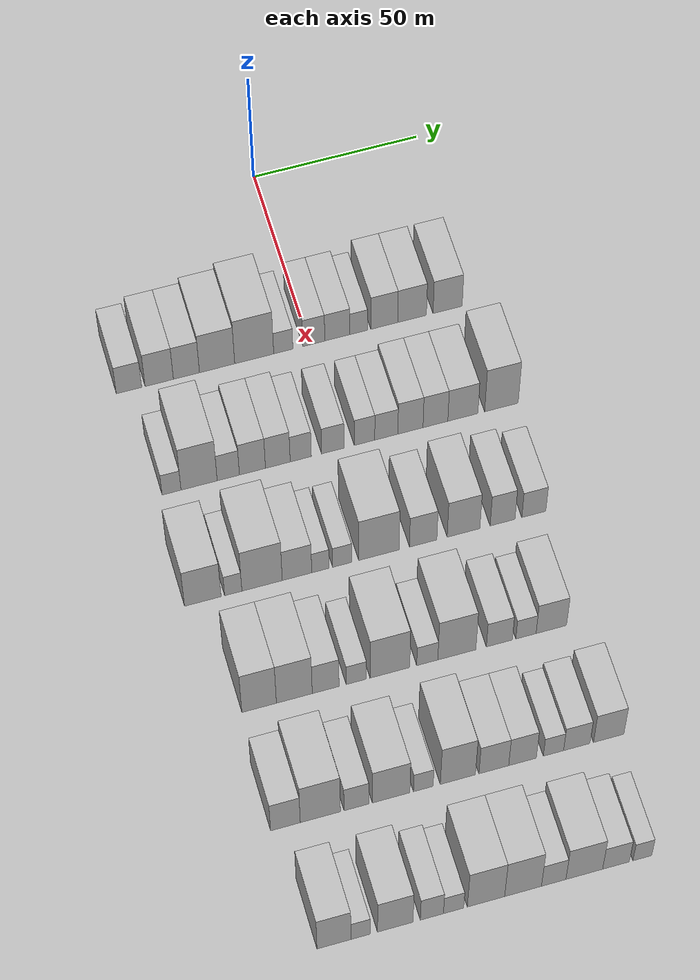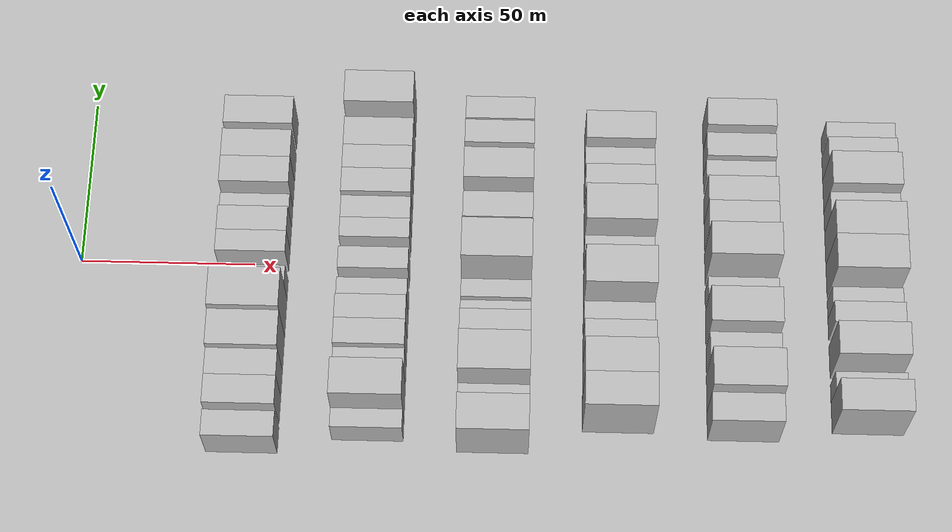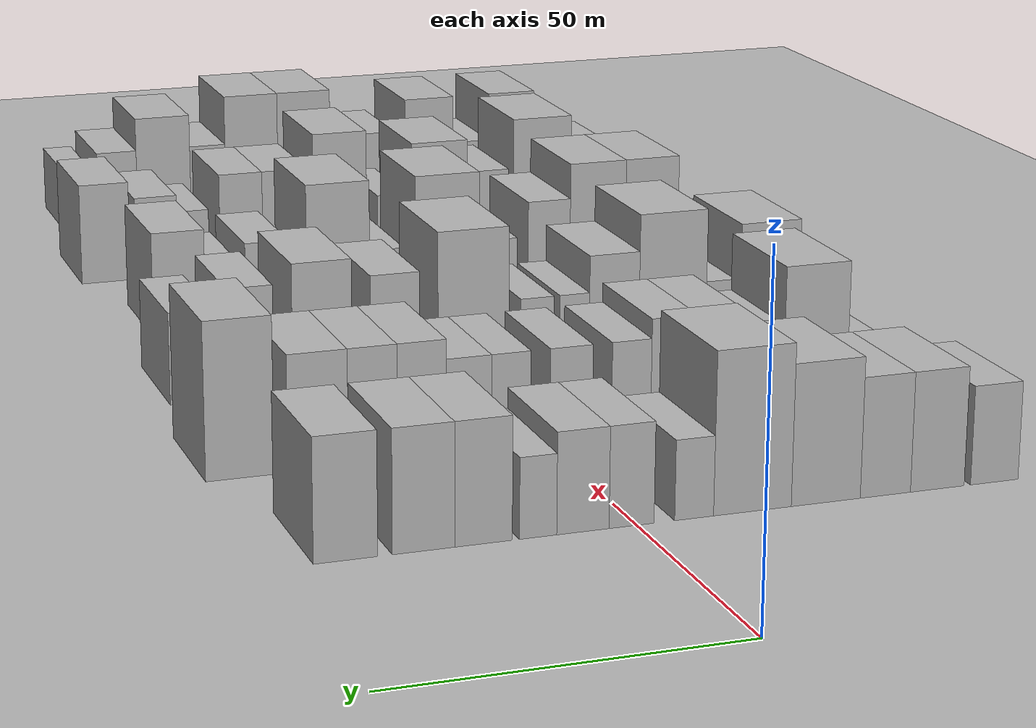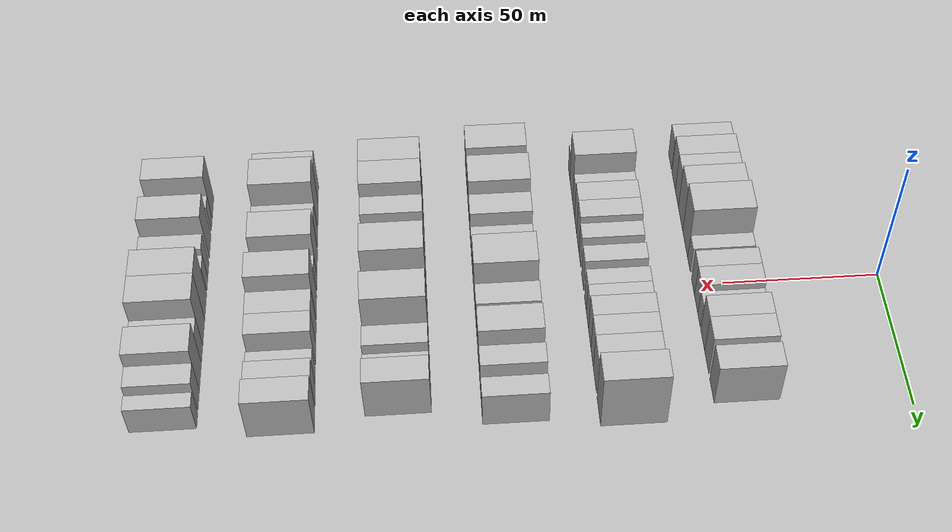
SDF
<sdf version="1.6">
 <world name="default">
  <include><name>ground_plane_1</name><uri>model://HANNAS_ground_plane</uri></include>
  <include>
   <name>ground_plane_2</name>
   <uri>model://HANNAS_ground_plane</uri>
   <pose>100 0 0  0 0 0</pose>
  </include>
  <model name="building_53">
   <static>1</static>
   <pose>50.0000 -53.4832 0 0.000000 0.000000 0.000000</pose>
   <link name="link">
    <pose>0 0 7.50 0 0 0</pose>
    <collision name="collision"><geometry><box><size>20.0000 7.4602 15.0000</size></box></geometry></collision>
    <visual name="visual">
     <cast_shadows>0</cast_shadows>
     <geometry><box><size>20.0000 7.4602 15.0000</size></box></geometry>
     <material>
      <script>
       <uri>model://HANNAS_wall/materials/scripts</uri>
       <uri>model://HANNAS_wall/materials/textures</uri>
       <name>vrc/HANNAS_wall</name>
      </script>
     </material>
    </visual>
   </link>
  </model>
  <model name="building_54">
   <static>1</static>
   <pose>50.0000 -44.5906 0 0.000000 0.000000 0.000000</pose>
   <link name="link">
    <pose>0 0 9.00 0 0 0</pose>
    <collision name="collision"><geometry><box><size>20.0000 8.3251 18.0000</size></box></geometry></collision>
    <visual name="visual">
     <cast_shadows>0</cast_shadows>
     <geometry><box><size>20.0000 8.3251 18.0000</size></box></geometry>
     <material>
      <script>
       <uri>model://HANNAS_wall/materials/scripts</uri>
       <uri>model://HANNAS_wall/materials/textures</uri>
       <name>vrc/HANNAS_wall</name>
      </script>
     </material>
    </visual>
   </link>
  </model>
  <model name="building_55">
   <static>1</static>
   <pose>50.0000 -36.5791 0 0.000000 0.000000 0.000000</pose>
   <link name="link">
    <pose>0 0 9.00 0 0 0</pose>
    <collision name="collision"><geometry><box><size>20.0000 7.6979 18.0000</size></box></geometry></collision>
    <visual name="visual">
     <cast_shadows>0</cast_shadows>
     <geometry><box><size>20.0000 7.6979 18.0000</size></box></geometry>
     <material>
      <script>
       <uri>model://HANNAS_wall/materials/scripts</uri>
       <uri>model://HANNAS_wall/materials/textures</uri>
       <name>vrc/HANNAS_wall</name>
      </script>
     </material>
    </visual>
   </link>
  </model>
  <model name="building_56">
   <static>1</static>
   <pose>50.0000 -27.5127 0 0.000000 0.000000 0.000000</pose>
   <link name="link">
    <pose>0 0 10.50 0 0 0</pose>
    <collision name="collision"><geometry><box><size>20.0000 10.4349 21.0000</size></box></geometry></collision>
    <visual name="visual">
     <cast_shadows>0</cast_shadows>
     <geometry><box><size>20.0000 10.4349 21.0000</size></box></geometry>
     <material>
      <script>
       <uri>model://HANNAS_wall/materials/scripts</uri>
       <uri>model://HANNAS_wall/materials/textures</uri>
       <name>vrc/HANNAS_wall</name>
      </script>
     </material>
    </visual>
   </link>
  </model>
  <model name="building_57">
   <static>1</static>
   <pose>50.0000 -16.5197 0 0.000000 0.000000 0.000000</pose>
   <link name="link">
    <pose>0 0 12.00 0 0 0</pose>
    <collision name="collision"><geometry><box><size>20.0000 11.5510 24.0000</size></box></geometry></collision>
    <visual name="visual">
     <cast_shadows>0</cast_shadows>
     <geometry><box><size>20.0000 11.5510 24.0000</size></box></geometry>
     <material>
      <script>
       <uri>model://HANNAS_wall/materials/scripts</uri>
       <uri>model://HANNAS_wall/materials/textures</uri>
       <name>vrc/HANNAS_wall</name>
      </script>
     </material>
    </visual>
   </link>
  </model>
  <model name="building_58">
   <static>1</static>
   <pose>50.0000 -7.8881 0 0.000000 0.000000 0.000000</pose>
   <link name="link">
    <pose>0 0 6.00 0 0 0</pose>
    <collision name="collision"><geometry><box><size>20.0000 5.7123 12.0000</size></box></geometry></collision>
    <visual name="visual">
     <cast_shadows>0</cast_shadows>
     <geometry><box><size>20.0000 5.7123 12.0000</size></box></geometry>
     <material>
      <script>
       <uri>model://HANNAS_wall/materials/scripts</uri>
       <uri>model://HANNAS_wall/materials/textures</uri>
       <name>vrc/HANNAS_wall</name>
      </script>
     </material>
    </visual>
   </link>
  </model>
  <model name="building_59">
   <static>1</static>
   <pose>50.0000 1.2218 0 0.000000 0.000000 0.000000</pose>
   <link name="link">
    <pose>0 0 7.50 0 0 0</pose>
    <collision name="collision"><geometry><box><size>20.0000 6.5074 15.0000</size></box></geometry></collision>
    <visual name="visual">
     <cast_shadows>0</cast_shadows>
     <geometry><box><size>20.0000 6.5074 15.0000</size></box></geometry>
     <material>
      <script>
       <uri>model://HANNAS_wall/materials/scripts</uri>
       <uri>model://HANNAS_wall/materials/textures</uri>
       <name>vrc/HANNAS_wall</name>
      </script>
     </material>
    </visual>
   </link>
  </model>
  <model name="building_60">
   <static>1</static>
   <pose>50.0000 8.2229 0 0.000000 0.000000 0.000000</pose>
   <link name="link">
    <pose>0 0 7.50 0 0 0</pose>
    <collision name="collision"><geometry><box><size>20.0000 7.4949 15.0000</size></box></geometry></collision>
    <visual name="visual">
     <cast_shadows>0</cast_shadows>
     <geometry><box><size>20.0000 7.4949 15.0000</size></box></geometry>
     <material>
      <script>
       <uri>model://HANNAS_wall/materials/scripts</uri>
       <uri>model://HANNAS_wall/materials/textures</uri>
       <name>vrc/HANNAS_wall</name>
      </script>
     </material>
    </visual>
   </link>
  </model>
  <model name="building_61">
   <static>1</static>
   <pose>50.0000 14.6097 0 0.000000 0.000000 0.000000</pose>
   <link name="link">
    <pose>0 0 6.00 0 0 0</pose>
    <collision name="collision"><geometry><box><size>20.0000 5.2786 12.0000</size></box></geometry></collision>
    <visual name="visual">
     <cast_shadows>0</cast_shadows>
     <geometry><box><size>20.0000 5.2786 12.0000</size></box></geometry>
     <material>
      <script>
       <uri>model://HANNAS_wall/materials/scripts</uri>
       <uri>model://HANNAS_wall/materials/textures</uri>
       <name>vrc/HANNAS_wall</name>
      </script>
     </material>
    </visual>
   </link>
  </model>
  <model name="building_62">
   <static>1</static>
   <pose>50.0000 22.2800 0 0.000000 0.000000 0.000000</pose>
   <link name="link">
    <pose>0 0 9.00 0 0 0</pose>
    <collision name="collision"><geometry><box><size>20.0000 8.0620 18.0000</size></box></geometry></collision>
    <visual name="visual">
     <cast_shadows>0</cast_shadows>
     <geometry><box><size>20.0000 8.0620 18.0000</size></box></geometry>
     <material>
      <script>
       <uri>model://HANNAS_wall/materials/scripts</uri>
       <uri>model://HANNAS_wall/materials/textures</uri>
       <name>vrc/HANNAS_wall</name>
      </script>
     </material>
    </visual>
   </link>
  </model>
  <model name="building_63">
   <static>1</static>
   <pose>50.0000 30.6245 0 0.000000 0.000000 0.000000</pose>
   <link name="link">
    <pose>0 0 9.00 0 0 0</pose>
    <collision name="collision"><geometry><box><size>20.0000 8.6270 18.0000</size></box></geometry></collision>
    <visual name="visual">
     <cast_shadows>0</cast_shadows>
     <geometry><box><size>20.0000 8.6270 18.0000</size></box></geometry>
     <material>
      <script>
       <uri>model://HANNAS_wall/materials/scripts</uri>
       <uri>model://HANNAS_wall/materials/textures</uri>
       <name>vrc/HANNAS_wall</name>
      </script>
     </material>
    </visual>
   </link>
  </model>
  <model name="building_64">
   <static>1</static>
   <pose>50.0000 41.3182 0 0.000000 0.000000 0.000000</pose>
   <link name="link">
    <pose>0 0 9.00 0 0 0</pose>
    <collision name="collision"><geometry><box><size>20.0000 8.7604 18.0000</size></box></geometry></collision>
    <visual name="visual">
     <cast_shadows>0</cast_shadows>
     <geometry><box><size>20.0000 8.7604 18.0000</size></box></geometry>
     <material>
      <script>
       <uri>model://HANNAS_wall/materials/scripts</uri>
       <uri>model://HANNAS_wall/materials/textures</uri>
       <name>vrc/HANNAS_wall</name>
      </script>
     </material>
    </visual>
   </link>
  </model>
  <model name="building_185">
   <static>1</static>
   <pose>85.0000 -50.1500 0 0.000000 0.000000 0.000000</pose>
   <link name="link">
    <pose>0 0 6.00 0 0 0</pose>
    <collision name="collision"><geometry><box><size>20.0000 5.4912 12.0000</size></box></geometry></collision>
    <visual name="visual">
     <cast_shadows>0</cast_shadows>
     <geometry><box><size>20.0000 5.4912 12.0000</size></box></geometry>
     <material>
      <script>
       <uri>model://HANNAS_wall/materials/scripts</uri>
       <uri>model://HANNAS_wall/materials/textures</uri>
       <name>vrc/HANNAS_wall</name>
      </script>
     </material>
    </visual>
   </link>
  </model>
  <model name="building_186">
   <static>1</static>
   <pose>85.0000 -42.1693 0 0.000000 0.000000 0.000000</pose>
   <link name="link">
    <pose>0 0 12.00 0 0 0</pose>
    <collision name="collision"><geometry><box><size>20.0000 10.4702 24.0000</size></box></geometry></collision>
    <visual name="visual">
     <cast_shadows>0</cast_shadows>
     <geometry><box><size>20.0000 10.4702 24.0000</size></box></geometry>
     <material>
      <script>
       <uri>model://HANNAS_wall/materials/scripts</uri>
       <uri>model://HANNAS_wall/materials/textures</uri>
       <name>vrc/HANNAS_wall</name>
      </script>
     </material>
    </visual>
   </link>
  </model>
  <model name="building_187">
   <static>1</static>
   <pose>85.0000 -33.7051 0 0.000000 0.000000 0.000000</pose>
   <link name="link">
    <pose>0 0 7.50 0 0 0</pose>
    <collision name="collision"><geometry><box><size>20.0000 6.4581 15.0000</size></box></geometry></collision>
    <visual name="visual">
     <cast_shadows>0</cast_shadows>
     <geometry><box><size>20.0000 6.4581 15.0000</size></box></geometry>
     <material>
      <script>
       <uri>model://HANNAS_wall/materials/scripts</uri>
       <uri>model://HANNAS_wall/materials/textures</uri>
       <name>vrc/HANNAS_wall</name>
      </script>
     </material>
    </visual>
   </link>
  </model>
  <model name="building_188">
   <static>1</static>
   <pose>85.0000 -26.6820 0 0.000000 0.000000 0.000000</pose>
   <link name="link">
    <pose>0 0 9.00 0 0 0</pose>
    <collision name="collision"><geometry><box><size>20.0000 7.5883 18.0000</size></box></geometry></collision>
    <visual name="visual">
     <cast_shadows>0</cast_shadows>
     <geometry><box><size>20.0000 7.5883 18.0000</size></box></geometry>
     <material>
      <script>
       <uri>model://HANNAS_wall/materials/scripts</uri>
       <uri>model://HANNAS_wall/materials/textures</uri>
       <name>vrc/HANNAS_wall</name>
      </script>
     </material>
    </visual>
   </link>
  </model>
  <model name="building_189">
   <static>1</static>
   <pose>85.0000 -19.2798 0 0.000000 0.000000 0.000000</pose>
   <link name="link">
    <pose>0 0 9.00 0 0 0</pose>
    <collision name="collision"><geometry><box><size>20.0000 7.2161 18.0000</size></box></geometry></collision>
    <visual name="visual">
     <cast_shadows>0</cast_shadows>
     <geometry><box><size>20.0000 7.2161 18.0000</size></box></geometry>
     <material>
      <script>
       <uri>model://HANNAS_wall/materials/scripts</uri>
       <uri>model://HANNAS_wall/materials/textures</uri>
       <name>vrc/HANNAS_wall</name>
      </script>
     </material>
    </visual>
   </link>
  </model>
  <model name="building_190">
   <static>1</static>
   <pose>85.0000 -12.5834 0 0.000000 0.000000 0.000000</pose>
   <link name="link">
    <pose>0 0 7.50 0 0 0</pose>
    <collision name="collision"><geometry><box><size>20.0000 6.1767 15.0000</size></box></geometry></collision>
    <visual name="visual">
     <cast_shadows>0</cast_shadows>
     <geometry><box><size>20.0000 6.1767 15.0000</size></box></geometry>
     <material>
      <script>
       <uri>model://HANNAS_wall/materials/scripts</uri>
       <uri>model://HANNAS_wall/materials/textures</uri>
       <name>vrc/HANNAS_wall</name>
      </script>
     </material>
    </visual>
   </link>
  </model>
  <model name="building_191">
   <static>1</static>
   <pose>85.0000 -3.2048 0 0.000000 0.000000 0.000000</pose>
   <link name="link">
    <pose>0 0 7.50 0 0 0</pose>
    <collision name="collision"><geometry><box><size>20.0000 6.5804 15.0000</size></box></geometry></collision>
    <visual name="visual">
     <cast_shadows>0</cast_shadows>
     <geometry><box><size>20.0000 6.5804 15.0000</size></box></geometry>
     <material>
      <script>
       <uri>model://HANNAS_wall/materials/scripts</uri>
       <uri>model://HANNAS_wall/materials/textures</uri>
       <name>vrc/HANNAS_wall</name>
      </script>
     </material>
    </visual>
   </link>
  </model>
  <model name="building_192">
   <static>1</static>
   <pose>85.0000 6.0995 0 0.000000 0.000000 0.000000</pose>
   <link name="link">
    <pose>0 0 7.50 0 0 0</pose>
    <collision name="collision"><geometry><box><size>20.0000 6.0282 15.0000</size></box></geometry></collision>
    <visual name="visual">
     <cast_shadows>0</cast_shadows>
     <geometry><box><size>20.0000 6.0282 15.0000</size></box></geometry>
     <material>
      <script>
       <uri>model://HANNAS_wall/materials/scripts</uri>
       <uri>model://HANNAS_wall/materials/textures</uri>
       <name>vrc/HANNAS_wall</name>
      </script>
     </material>
    </visual>
   </link>
  </model>
  <model name="building_193">
   <static>1</static>
   <pose>85.0000 12.5198 0 0.000000 0.000000 0.000000</pose>
   <link name="link">
    <pose>0 0 7.50 0 0 0</pose>
    <collision name="collision"><geometry><box><size>20.0000 6.8123 15.0000</size></box></geometry></collision>
    <visual name="visual">
     <cast_shadows>0</cast_shadows>
     <geometry><box><size>20.0000 6.8123 15.0000</size></box></geometry>
     <material>
      <script>
       <uri>model://HANNAS_wall/materials/scripts</uri>
       <uri>model://HANNAS_wall/materials/textures</uri>
       <name>vrc/HANNAS_wall</name>
      </script>
     </material>
    </visual>
   </link>
  </model>
  <model name="building_194">
   <static>1</static>
   <pose>85.0000 19.6319 0 0.000000 0.000000 0.000000</pose>
   <link name="link">
    <pose>0 0 9.00 0 0 0</pose>
    <collision name="collision"><geometry><box><size>20.0000 7.4119 18.0000</size></box></geometry></collision>
    <visual name="visual">
     <cast_shadows>0</cast_shadows>
     <geometry><box><size>20.0000 7.4119 18.0000</size></box></geometry>
     <material>
      <script>
       <uri>model://HANNAS_wall/materials/scripts</uri>
       <uri>model://HANNAS_wall/materials/textures</uri>
       <name>vrc/HANNAS_wall</name>
      </script>
     </material>
    </visual>
   </link>
  </model>
  <model name="building_195">
   <static>1</static>
   <pose>85.0000 27.0115 0 0.000000 0.000000 0.000000</pose>
   <link name="link">
    <pose>0 0 9.00 0 0 0</pose>
    <collision name="collision"><geometry><box><size>20.0000 7.3475 18.0000</size></box></geometry></collision>
    <visual name="visual">
     <cast_shadows>0</cast_shadows>
     <geometry><box><size>20.0000 7.3475 18.0000</size></box></geometry>
     <material>
      <script>
       <uri>model://HANNAS_wall/materials/scripts</uri>
       <uri>model://HANNAS_wall/materials/textures</uri>
       <name>vrc/HANNAS_wall</name>
      </script>
     </material>
    </visual>
   </link>
  </model>
  <model name="building_196">
   <static>1</static>
   <pose>85.0000 35.1372 0 0.000000 0.000000 0.000000</pose>
   <link name="link">
    <pose>0 0 9.00 0 0 0</pose>
    <collision name="collision"><geometry><box><size>20.0000 8.9038 18.0000</size></box></geometry></collision>
    <visual name="visual">
     <cast_shadows>0</cast_shadows>
     <geometry><box><size>20.0000 8.9038 18.0000</size></box></geometry>
     <material>
      <script>
       <uri>model://HANNAS_wall/materials/scripts</uri>
       <uri>model://HANNAS_wall/materials/textures</uri>
       <name>vrc/HANNAS_wall</name>
      </script>
     </material>
    </visual>
   </link>
  </model>
  <model name="building_197">
   <static>1</static>
   <pose>85.0000 46.5743 0 0.000000 0.000000 0.000000</pose>
   <link name="link">
    <pose>0 0 12.00 0 0 0</pose>
    <collision name="collision"><geometry><box><size>20.0000 9.9704 24.0000</size></box></geometry></collision>
    <visual name="visual">
     <cast_shadows>0</cast_shadows>
     <geometry><box><size>20.0000 9.9704 24.0000</size></box></geometry>
     <material>
      <script>
       <uri>model://HANNAS_wall/materials/scripts</uri>
       <uri>model://HANNAS_wall/materials/textures</uri>
       <name>vrc/HANNAS_wall</name>
      </script>
     </material>
    </visual>
   </link>
  </model>
  <model name="building_312">
   <static>1</static>
   <pose>120.0000 -50.4678 0 0.000000 0.000000 0.000000</pose>
   <link name="link">
    <pose>0 0 10.50 0 0 0</pose>
    <collision name="collision"><geometry><box><size>20.0000 10.4176 21.0000</size></box></geometry></collision>
    <visual name="visual">
     <cast_shadows>0</cast_shadows>
     <geometry><box><size>20.0000 10.4176 21.0000</size></box></geometry>
     <material>
      <script>
       <uri>model://HANNAS_wall/materials/scripts</uri>
       <uri>model://HANNAS_wall/materials/textures</uri>
       <name>vrc/HANNAS_wall</name>
      </script>
     </material>
    </visual>
   </link>
  </model>
  <model name="building_313">
   <static>1</static>
   <pose>120.0000 -41.7951 0 0.000000 0.000000 0.000000</pose>
   <link name="link">
    <pose>0 0 6.00 0 0 0</pose>
    <collision name="collision"><geometry><box><size>20.0000 4.9277 12.0000</size></box></geometry></collision>
    <visual name="visual">
     <cast_shadows>0</cast_shadows>
     <geometry><box><size>20.0000 4.9277 12.0000</size></box></geometry>
     <material>
      <script>
       <uri>model://HANNAS_wall/materials/scripts</uri>
       <uri>model://HANNAS_wall/materials/textures</uri>
       <name>vrc/HANNAS_wall</name>
      </script>
     </material>
    </visual>
   </link>
  </model>
  <model name="building_314">
   <static>1</static>
   <pose>120.0000 -33.5605 0 0.000000 0.000000 0.000000</pose>
   <link name="link">
    <pose>0 0 12.00 0 0 0</pose>
    <collision name="collision"><geometry><box><size>20.0000 11.5415 24.0000</size></box></geometry></collision>
    <visual name="visual">
     <cast_shadows>0</cast_shadows>
     <geometry><box><size>20.0000 11.5415 24.0000</size></box></geometry>
     <material>
      <script>
       <uri>model://HANNAS_wall/materials/scripts</uri>
       <uri>model://HANNAS_wall/materials/textures</uri>
       <name>vrc/HANNAS_wall</name>
      </script>
     </material>
    </visual>
   </link>
  </model>
  <model name="building_315">
   <static>1</static>
   <pose>120.0000 -23.5628 0 0.000000 0.000000 0.000000</pose>
   <link name="link">
    <pose>0 0 9.00 0 0 0</pose>
    <collision name="collision"><geometry><box><size>20.0000 8.4538 18.0000</size></box></geometry></collision>
    <visual name="visual">
     <cast_shadows>0</cast_shadows>
     <geometry><box><size>20.0000 8.4538 18.0000</size></box></geometry>
     <material>
      <script>
       <uri>model://HANNAS_wall/materials/scripts</uri>
       <uri>model://HANNAS_wall/materials/textures</uri>
       <name>vrc/HANNAS_wall</name>
      </script>
     </material>
    </visual>
   </link>
  </model>
  <model name="building_316">
   <static>1</static>
   <pose>120.0000 -16.8385 0 0.000000 0.000000 0.000000</pose>
   <link name="link">
    <pose>0 0 6.00 0 0 0</pose>
    <collision name="collision"><geometry><box><size>20.0000 4.9949 12.0000</size></box></geometry></collision>
    <visual name="visual">
     <cast_shadows>0</cast_shadows>
     <geometry><box><size>20.0000 4.9949 12.0000</size></box></geometry>
     <material>
      <script>
       <uri>model://HANNAS_wall/materials/scripts</uri>
       <uri>model://HANNAS_wall/materials/textures</uri>
       <name>vrc/HANNAS_wall</name>
      </script>
     </material>
    </visual>
   </link>
  </model>
  <model name="building_317">
   <static>1</static>
   <pose>120.0000 -10.5899 0 0.000000 0.000000 0.000000</pose>
   <link name="link">
    <pose>0 0 6.00 0 0 0</pose>
    <collision name="collision"><geometry><box><size>20.0000 5.5023 12.0000</size></box></geometry></collision>
    <visual name="visual">
     <cast_shadows>0</cast_shadows>
     <geometry><box><size>20.0000 5.5023 12.0000</size></box></geometry>
     <material>
      <script>
       <uri>model://HANNAS_wall/materials/scripts</uri>
       <uri>model://HANNAS_wall/materials/textures</uri>
       <name>vrc/HANNAS_wall</name>
      </script>
     </material>
    </visual>
   </link>
  </model>
  <model name="building_318">
   <static>1</static>
   <pose>120.0000 -0.0024 0 0.000000 0.000000 0.000000</pose>
   <link name="link">
    <pose>0 0 12.00 0 0 0</pose>
    <collision name="collision"><geometry><box><size>20.0000 11.6725 24.0000</size></box></geometry></collision>
    <visual name="visual">
     <cast_shadows>0</cast_shadows>
     <geometry><box><size>20.0000 11.6725 24.0000</size></box></geometry>
     <material>
      <script>
       <uri>model://HANNAS_wall/materials/scripts</uri>
       <uri>model://HANNAS_wall/materials/textures</uri>
       <name>vrc/HANNAS_wall</name>
      </script>
     </material>
    </visual>
   </link>
  </model>
  <model name="building_319">
   <static>1</static>
   <pose>120.0000 12.8028 0 0.000000 0.000000 0.000000</pose>
   <link name="link">
    <pose>0 0 9.00 0 0 0</pose>
    <collision name="collision"><geometry><box><size>20.0000 7.9379 18.0000</size></box></geometry></collision>
    <visual name="visual">
     <cast_shadows>0</cast_shadows>
     <geometry><box><size>20.0000 7.9379 18.0000</size></box></geometry>
     <material>
      <script>
       <uri>model://HANNAS_wall/materials/scripts</uri>
       <uri>model://HANNAS_wall/materials/textures</uri>
       <name>vrc/HANNAS_wall</name>
      </script>
     </material>
    </visual>
   </link>
  </model>
  <model name="building_320">
   <static>1</static>
   <pose>120.0000 24.5223 0 0.000000 0.000000 0.000000</pose>
   <link name="link">
    <pose>0 0 10.50 0 0 0</pose>
    <collision name="collision"><geometry><box><size>20.0000 9.5012 21.0000</size></box></geometry></collision>
    <visual name="visual">
     <cast_shadows>0</cast_shadows>
     <geometry><box><size>20.0000 9.5012 21.0000</size></box></geometry>
     <material>
      <script>
       <uri>model://HANNAS_wall/materials/scripts</uri>
       <uri>model://HANNAS_wall/materials/textures</uri>
       <name>vrc/HANNAS_wall</name>
      </script>
     </material>
    </visual>
   </link>
  </model>
  <model name="building_321">
   <static>1</static>
   <pose>120.0000 35.9022 0 0.000000 0.000000 0.000000</pose>
   <link name="link">
    <pose>0 0 9.00 0 0 0</pose>
    <collision name="collision"><geometry><box><size>20.0000 7.2587 18.0000</size></box></geometry></collision>
    <visual name="visual">
     <cast_shadows>0</cast_shadows>
     <geometry><box><size>20.0000 7.2587 18.0000</size></box></geometry>
     <material>
      <script>
       <uri>model://HANNAS_wall/materials/scripts</uri>
       <uri>model://HANNAS_wall/materials/textures</uri>
       <name>vrc/HANNAS_wall</name>
      </script>
     </material>
    </visual>
   </link>
  </model>
  <model name="building_322">
   <static>1</static>
   <pose>120.0000 45.0414 0 0.000000 0.000000 0.000000</pose>
   <link name="link">
    <pose>0 0 7.50 0 0 0</pose>
    <collision name="collision"><geometry><box><size>20.0000 7.0197 15.0000</size></box></geometry></collision>
    <visual name="visual">
     <cast_shadows>0</cast_shadows>
     <geometry><box><size>20.0000 7.0197 15.0000</size></box></geometry>
     <material>
      <script>
       <uri>model://HANNAS_wall/materials/scripts</uri>
       <uri>model://HANNAS_wall/materials/textures</uri>
       <name>vrc/HANNAS_wall</name>
      </script>
     </material>
    </visual>
   </link>
  </model>
  <model name="building_437">
   <static>1</static>
   <pose>155.0000 -44.0690 0 0.000000 0.000000 0.000000</pose>
   <link name="link">
    <pose>0 0 12.00 0 0 0</pose>
    <collision name="collision"><geometry><box><size>20.0000 9.6915 24.0000</size></box></geometry></collision>
    <visual name="visual">
     <cast_shadows>0</cast_shadows>
     <geometry><box><size>20.0000 9.6915 24.0000</size></box></geometry>
     <material>
      <script>
       <uri>model://HANNAS_wall/materials/scripts</uri>
       <uri>model://HANNAS_wall/materials/textures</uri>
       <name>vrc/HANNAS_wall</name>
      </script>
     </material>
    </visual>
   </link>
  </model>
  <model name="building_438">
   <static>1</static>
   <pose>155.0000 -34.1852 0 0.000000 0.000000 0.000000</pose>
   <link name="link">
    <pose>0 0 12.00 0 0 0</pose>
    <collision name="collision"><geometry><box><size>20.0000 10.0760 24.0000</size></box></geometry></collision>
    <visual name="visual">
     <cast_shadows>0</cast_shadows>
     <geometry><box><size>20.0000 10.0760 24.0000</size></box></geometry>
     <material>
      <script>
       <uri>model://HANNAS_wall/materials/scripts</uri>
       <uri>model://HANNAS_wall/materials/textures</uri>
       <name>vrc/HANNAS_wall</name>
      </script>
     </material>
    </visual>
   </link>
  </model>
  <model name="building_439">
   <static>1</static>
   <pose>155.0000 -25.3701 0 0.000000 0.000000 0.000000</pose>
   <link name="link">
    <pose>0 0 9.00 0 0 0</pose>
    <collision name="collision"><geometry><box><size>20.0000 7.5543 18.0000</size></box></geometry></collision>
    <visual name="visual">
     <cast_shadows>0</cast_shadows>
     <geometry><box><size>20.0000 7.5543 18.0000</size></box></geometry>
     <material>
      <script>
       <uri>model://HANNAS_wall/materials/scripts</uri>
       <uri>model://HANNAS_wall/materials/textures</uri>
       <name>vrc/HANNAS_wall</name>
      </script>
     </material>
    </visual>
   </link>
  </model>
  <model name="building_440">
   <static>1</static>
   <pose>155.0000 -16.7191 0 0.000000 0.000000 0.000000</pose>
   <link name="link">
    <pose>0 0 6.00 0 0 0</pose>
    <collision name="collision"><geometry><box><size>20.0000 5.7476 12.0000</size></box></geometry></collision>
    <visual name="visual">
     <cast_shadows>0</cast_shadows>
     <geometry><box><size>20.0000 5.7476 12.0000</size></box></geometry>
     <material>
      <script>
       <uri>model://HANNAS_wall/materials/scripts</uri>
       <uri>model://HANNAS_wall/materials/textures</uri>
       <name>vrc/HANNAS_wall</name>
      </script>
     </material>
    </visual>
   </link>
  </model>
  <model name="building_441">
   <static>1</static>
   <pose>155.0000 -7.2246 0 0.000000 0.000000 0.000000</pose>
   <link name="link">
    <pose>0 0 12.00 0 0 0</pose>
    <collision name="collision"><geometry><box><size>20.0000 11.2413 24.0000</size></box></geometry></collision>
    <visual name="visual">
     <cast_shadows>0</cast_shadows>
     <geometry><box><size>20.0000 11.2413 24.0000</size></box></geometry>
     <material>
      <script>
       <uri>model://HANNAS_wall/materials/scripts</uri>
       <uri>model://HANNAS_wall/materials/textures</uri>
       <name>vrc/HANNAS_wall</name>
      </script>
     </material>
    </visual>
   </link>
  </model>
  <model name="building_442">
   <static>1</static>
   <pose>155.0000 3.3948 0 0.000000 0.000000 0.000000</pose>
   <link name="link">
    <pose>0 0 6.00 0 0 0</pose>
    <collision name="collision"><geometry><box><size>20.0000 5.9975 12.0000</size></box></geometry></collision>
    <visual name="visual">
     <cast_shadows>0</cast_shadows>
     <geometry><box><size>20.0000 5.9975 12.0000</size></box></geometry>
     <material>
      <script>
       <uri>model://HANNAS_wall/materials/scripts</uri>
       <uri>model://HANNAS_wall/materials/textures</uri>
       <name>vrc/HANNAS_wall</name>
      </script>
     </material>
    </visual>
   </link>
  </model>
  <model name="building_443">
   <static>1</static>
   <pose>155.0000 11.8227 0 0.000000 0.000000 0.000000</pose>
   <link name="link">
    <pose>0 0 12.00 0 0 0</pose>
    <collision name="collision"><geometry><box><size>20.0000 10.8583 24.0000</size></box></geometry></collision>
    <visual name="visual">
     <cast_shadows>0</cast_shadows>
     <geometry><box><size>20.0000 10.8583 24.0000</size></box></geometry>
     <material>
      <script>
       <uri>model://HANNAS_wall/materials/scripts</uri>
       <uri>model://HANNAS_wall/materials/textures</uri>
       <name>vrc/HANNAS_wall</name>
      </script>
     </material>
    </visual>
   </link>
  </model>
  <model name="building_444">
   <static>1</static>
   <pose>155.0000 23.9700 0 0.000000 0.000000 0.000000</pose>
   <link name="link">
    <pose>0 0 7.50 0 0 0</pose>
    <collision name="collision"><geometry><box><size>20.0000 7.4364 15.0000</size></box></geometry></collision>
    <visual name="visual">
     <cast_shadows>0</cast_shadows>
     <geometry><box><size>20.0000 7.4364 15.0000</size></box></geometry>
     <material>
      <script>
       <uri>model://HANNAS_wall/materials/scripts</uri>
       <uri>model://HANNAS_wall/materials/textures</uri>
       <name>vrc/HANNAS_wall</name>
      </script>
     </material>
    </visual>
   </link>
  </model>
  <model name="building_445">
   <static>1</static>
   <pose>155.0000 31.5916 0 0.000000 0.000000 0.000000</pose>
   <link name="link">
    <pose>0 0 6.00 0 0 0</pose>
    <collision name="collision"><geometry><box><size>20.0000 5.8069 12.0000</size></box></geometry></collision>
    <visual name="visual">
     <cast_shadows>0</cast_shadows>
     <geometry><box><size>20.0000 5.8069 12.0000</size></box></geometry>
     <material>
      <script>
       <uri>model://HANNAS_wall/materials/scripts</uri>
       <uri>model://HANNAS_wall/materials/textures</uri>
       <name>vrc/HANNAS_wall</name>
      </script>
     </material>
    </visual>
   </link>
  </model>
  <model name="building_446">
   <static>1</static>
   <pose>155.0000 38.8718 0 0.000000 0.000000 0.000000</pose>
   <link name="link">
    <pose>0 0 9.00 0 0 0</pose>
    <collision name="collision"><geometry><box><size>20.0000 8.7534 18.0000</size></box></geometry></collision>
    <visual name="visual">
     <cast_shadows>0</cast_shadows>
     <geometry><box><size>20.0000 8.7534 18.0000</size></box></geometry>
     <material>
      <script>
       <uri>model://HANNAS_wall/materials/scripts</uri>
       <uri>model://HANNAS_wall/materials/textures</uri>
       <name>vrc/HANNAS_wall</name>
      </script>
     </material>
    </visual>
   </link>
  </model>
  <model name="building_566">
   <static>1</static>
   <pose>190.0000 -46.5001 0 0.000000 0.000000 0.000000</pose>
   <link name="link">
    <pose>0 0 9.00 0 0 0</pose>
    <collision name="collision"><geometry><box><size>20.0000 8.1837 18.0000</size></box></geometry></collision>
    <visual name="visual">
     <cast_shadows>0</cast_shadows>
     <geometry><box><size>20.0000 8.1837 18.0000</size></box></geometry>
     <material>
      <script>
       <uri>model://HANNAS_wall/materials/scripts</uri>
       <uri>model://HANNAS_wall/materials/textures</uri>
       <name>vrc/HANNAS_wall</name>
      </script>
     </material>
    </visual>
   </link>
  </model>
  <model name="building_567">
   <static>1</static>
   <pose>190.0000 -36.8708 0 0.000000 0.000000 0.000000</pose>
   <link name="link">
    <pose>0 0 12.00 0 0 0</pose>
    <collision name="collision"><geometry><box><size>20.0000 11.0748 24.0000</size></box></geometry></collision>
    <visual name="visual">
     <cast_shadows>0</cast_shadows>
     <geometry><box><size>20.0000 11.0748 24.0000</size></box></geometry>
     <material>
      <script>
       <uri>model://HANNAS_wall/materials/scripts</uri>
       <uri>model://HANNAS_wall/materials/textures</uri>
       <name>vrc/HANNAS_wall</name>
      </script>
     </material>
    </visual>
   </link>
  </model>
  <model name="building_568">
   <static>1</static>
   <pose>190.0000 -26.9008 0 0.000000 0.000000 0.000000</pose>
   <link name="link">
    <pose>0 0 7.50 0 0 0</pose>
    <collision name="collision"><geometry><box><size>20.0000 6.8653 15.0000</size></box></geometry></collision>
    <visual name="visual">
     <cast_shadows>0</cast_shadows>
     <geometry><box><size>20.0000 6.8653 15.0000</size></box></geometry>
     <material>
      <script>
       <uri>model://HANNAS_wall/materials/scripts</uri>
       <uri>model://HANNAS_wall/materials/textures</uri>
       <name>vrc/HANNAS_wall</name>
      </script>
     </material>
    </visual>
   </link>
  </model>
  <model name="building_569">
   <static>1</static>
   <pose>190.0000 -17.2564 0 0.000000 0.000000 0.000000</pose>
   <link name="link">
    <pose>0 0 10.50 0 0 0</pose>
    <collision name="collision"><geometry><box><size>20.0000 10.4234 21.0000</size></box></geometry></collision>
    <visual name="visual">
     <cast_shadows>0</cast_shadows>
     <geometry><box><size>20.0000 10.4234 21.0000</size></box></geometry>
     <material>
      <script>
       <uri>model://HANNAS_wall/materials/scripts</uri>
       <uri>model://HANNAS_wall/materials/textures</uri>
       <name>vrc/HANNAS_wall</name>
      </script>
     </material>
    </visual>
   </link>
  </model>
  <model name="building_570">
   <static>1</static>
   <pose>190.0000 -8.3023 0 0.000000 0.000000 0.000000</pose>
   <link name="link">
    <pose>0 0 6.00 0 0 0</pose>
    <collision name="collision"><geometry><box><size>20.0000 5.4848 12.0000</size></box></geometry></collision>
    <visual name="visual">
     <cast_shadows>0</cast_shadows>
     <geometry><box><size>20.0000 5.4848 12.0000</size></box></geometry>
     <material>
      <script>
       <uri>model://HANNAS_wall/materials/scripts</uri>
       <uri>model://HANNAS_wall/materials/textures</uri>
       <name>vrc/HANNAS_wall</name>
      </script>
     </material>
    </visual>
   </link>
  </model>
  <model name="building_571">
   <static>1</static>
   <pose>190.0000 1.3445 0 0.000000 0.000000 0.000000</pose>
   <link name="link">
    <pose>0 0 12.00 0 0 0</pose>
    <collision name="collision"><geometry><box><size>20.0000 9.8087 24.0000</size></box></geometry></collision>
    <visual name="visual">
     <cast_shadows>0</cast_shadows>
     <geometry><box><size>20.0000 9.8087 24.0000</size></box></geometry>
     <material>
      <script>
       <uri>model://HANNAS_wall/materials/scripts</uri>
       <uri>model://HANNAS_wall/materials/textures</uri>
       <name>vrc/HANNAS_wall</name>
      </script>
     </material>
    </visual>
   </link>
  </model>
  <model name="building_572">
   <static>1</static>
   <pose>190.0000 11.4167 0 0.000000 0.000000 0.000000</pose>
   <link name="link">
    <pose>0 0 9.00 0 0 0</pose>
    <collision name="collision"><geometry><box><size>20.0000 8.3357 18.0000</size></box></geometry></collision>
    <visual name="visual">
     <cast_shadows>0</cast_shadows>
     <geometry><box><size>20.0000 8.3357 18.0000</size></box></geometry>
     <material>
      <script>
       <uri>model://HANNAS_wall/materials/scripts</uri>
       <uri>model://HANNAS_wall/materials/textures</uri>
       <name>vrc/HANNAS_wall</name>
      </script>
     </material>
    </visual>
   </link>
  </model>
  <model name="building_573">
   <static>1</static>
   <pose>190.0000 19.4626 0 0.000000 0.000000 0.000000</pose>
   <link name="link">
    <pose>0 0 9.00 0 0 0</pose>
    <collision name="collision"><geometry><box><size>20.0000 7.7562 18.0000</size></box></geometry></collision>
    <visual name="visual">
     <cast_shadows>0</cast_shadows>
     <geometry><box><size>20.0000 7.7562 18.0000</size></box></geometry>
     <material>
      <script>
       <uri>model://HANNAS_wall/materials/scripts</uri>
       <uri>model://HANNAS_wall/materials/textures</uri>
       <name>vrc/HANNAS_wall</name>
      </script>
     </material>
    </visual>
   </link>
  </model>
  <model name="building_574">
   <static>1</static>
   <pose>190.0000 28.1891 0 0.000000 0.000000 0.000000</pose>
   <link name="link">
    <pose>0 0 6.00 0 0 0</pose>
    <collision name="collision"><geometry><box><size>20.0000 5.6970 12.0000</size></box></geometry></collision>
    <visual name="visual">
     <cast_shadows>0</cast_shadows>
     <geometry><box><size>20.0000 5.6970 12.0000</size></box></geometry>
     <material>
      <script>
       <uri>model://HANNAS_wall/materials/scripts</uri>
       <uri>model://HANNAS_wall/materials/textures</uri>
       <name>vrc/HANNAS_wall</name>
      </script>
     </material>
    </visual>
   </link>
  </model>
  <model name="building_575">
   <static>1</static>
   <pose>190.0000 34.7608 0 0.000000 0.000000 0.000000</pose>
   <link name="link">
    <pose>0 0 7.50 0 0 0</pose>
    <collision name="collision"><geometry><box><size>20.0000 7.4464 15.0000</size></box></geometry></collision>
    <visual name="visual">
     <cast_shadows>0</cast_shadows>
     <geometry><box><size>20.0000 7.4464 15.0000</size></box></geometry>
     <material>
      <script>
       <uri>model://HANNAS_wall/materials/scripts</uri>
       <uri>model://HANNAS_wall/materials/textures</uri>
       <name>vrc/HANNAS_wall</name>
      </script>
     </material>
    </visual>
   </link>
  </model>
  <model name="building_576">
   <static>1</static>
   <pose>190.0000 43.7836 0 0.000000 0.000000 0.000000</pose>
   <link name="link">
    <pose>0 0 9.00 0 0 0</pose>
    <collision name="collision"><geometry><box><size>20.0000 8.5992 18.0000</size></box></geometry></collision>
    <visual name="visual">
     <cast_shadows>0</cast_shadows>
     <geometry><box><size>20.0000 8.5992 18.0000</size></box></geometry>
     <material>
      <script>
       <uri>model://HANNAS_wall/materials/scripts</uri>
       <uri>model://HANNAS_wall/materials/textures</uri>
       <name>vrc/HANNAS_wall</name>
      </script>
     </material>
    </visual>
   </link>
  </model>
  <model name="building_684">
   <static>1</static>
   <pose>225.0000 -43.1930 0 0.000000 0.000000 0.000000</pose>
   <link name="link">
    <pose>0 0 10.50 0 0 0</pose>
    <collision name="collision"><geometry><box><size>20.0000 9.2010 21.0000</size></box></geometry></collision>
    <visual name="visual">
     <cast_shadows>0</cast_shadows>
     <geometry><box><size>20.0000 9.2010 21.0000</size></box></geometry>
     <material>
      <script>
       <uri>model://HANNAS_wall/materials/scripts</uri>
       <uri>model://HANNAS_wall/materials/textures</uri>
       <name>vrc/HANNAS_wall</name>
      </script>
     </material>
    </visual>
   </link>
  </model>
  <model name="building_685">
   <static>1</static>
   <pose>225.0000 -35.9826 0 0.000000 0.000000 0.000000</pose>
   <link name="link">
    <pose>0 0 6.00 0 0 0</pose>
    <collision name="collision"><geometry><box><size>20.0000 5.2198 12.0000</size></box></geometry></collision>
    <visual name="visual">
     <cast_shadows>0</cast_shadows>
     <geometry><box><size>20.0000 5.2198 12.0000</size></box></geometry>
     <material>
      <script>
       <uri>model://HANNAS_wall/materials/scripts</uri>
       <uri>model://HANNAS_wall/materials/textures</uri>
       <name>vrc/HANNAS_wall</name>
      </script>
     </material>
    </visual>
   </link>
  </model>
  <model name="building_686">
   <static>1</static>
   <pose>225.0000 -26.5323 0 0.000000 0.000000 0.000000</pose>
   <link name="link">
    <pose>0 0 10.50 0 0 0</pose>
    <collision name="collision"><geometry><box><size>20.0000 9.6808 21.0000</size></box></geometry></collision>
    <visual name="visual">
     <cast_shadows>0</cast_shadows>
     <geometry><box><size>20.0000 9.6808 21.0000</size></box></geometry>
     <material>
      <script>
       <uri>model://HANNAS_wall/materials/scripts</uri>
       <uri>model://HANNAS_wall/materials/textures</uri>
       <name>vrc/HANNAS_wall</name>
      </script>
     </material>
    </visual>
   </link>
  </model>
  <model name="building_687">
   <static>1</static>
   <pose>225.0000 -16.5298 0 0.000000 0.000000 0.000000</pose>
   <link name="link">
    <pose>0 0 7.50 0 0 0</pose>
    <collision name="collision"><geometry><box><size>20.0000 6.3244 15.0000</size></box></geometry></collision>
    <visual name="visual">
     <cast_shadows>0</cast_shadows>
     <geometry><box><size>20.0000 6.3244 15.0000</size></box></geometry>
     <material>
      <script>
       <uri>model://HANNAS_wall/materials/scripts</uri>
       <uri>model://HANNAS_wall/materials/textures</uri>
       <name>vrc/HANNAS_wall</name>
      </script>
     </material>
    </visual>
   </link>
  </model>
  <model name="building_688">
   <static>1</static>
   <pose>225.0000 -10.6001 0 0.000000 0.000000 0.000000</pose>
   <link name="link">
    <pose>0 0 6.00 0 0 0</pose>
    <collision name="collision"><geometry><box><size>20.0000 5.5349 12.0000</size></box></geometry></collision>
    <visual name="visual">
     <cast_shadows>0</cast_shadows>
     <geometry><box><size>20.0000 5.5349 12.0000</size></box></geometry>
     <material>
      <script>
       <uri>model://HANNAS_wall/materials/scripts</uri>
       <uri>model://HANNAS_wall/materials/textures</uri>
       <name>vrc/HANNAS_wall</name>
      </script>
     </material>
    </visual>
   </link>
  </model>
  <model name="building_689">
   <static>1</static>
   <pose>225.0000 -1.7101 0 0.000000 0.000000 0.000000</pose>
   <link name="link">
    <pose>0 0 12.00 0 0 0</pose>
    <collision name="collision"><geometry><box><size>20.0000 10.2450 24.0000</size></box></geometry></collision>
    <visual name="visual">
     <cast_shadows>0</cast_shadows>
     <geometry><box><size>20.0000 10.2450 24.0000</size></box></geometry>
     <material>
      <script>
       <uri>model://HANNAS_wall/materials/scripts</uri>
       <uri>model://HANNAS_wall/materials/textures</uri>
       <name>vrc/HANNAS_wall</name>
      </script>
     </material>
    </visual>
   </link>
  </model>
  <model name="building_690">
   <static>1</static>
   <pose>225.0000 8.4870 0 0.000000 0.000000 0.000000</pose>
   <link name="link">
    <pose>0 0 12.00 0 0 0</pose>
    <collision name="collision"><geometry><box><size>20.0000 10.1492 24.0000</size></box></geometry></collision>
    <visual name="visual">
     <cast_shadows>0</cast_shadows>
     <geometry><box><size>20.0000 10.1492 24.0000</size></box></geometry>
     <material>
      <script>
       <uri>model://HANNAS_wall/materials/scripts</uri>
       <uri>model://HANNAS_wall/materials/textures</uri>
       <name>vrc/HANNAS_wall</name>
      </script>
     </material>
    </visual>
   </link>
  </model>
  <model name="building_691">
   <static>1</static>
   <pose>225.0000 16.9401 0 0.000000 0.000000 0.000000</pose>
   <link name="link">
    <pose>0 0 7.50 0 0 0</pose>
    <collision name="collision"><geometry><box><size>20.0000 6.7570 15.0000</size></box></geometry></collision>
    <visual name="visual">
     <cast_shadows>0</cast_shadows>
     <geometry><box><size>20.0000 6.7570 15.0000</size></box></geometry>
     <material>
      <script>
       <uri>model://HANNAS_wall/materials/scripts</uri>
       <uri>model://HANNAS_wall/materials/textures</uri>
       <name>vrc/HANNAS_wall</name>
      </script>
     </material>
    </visual>
   </link>
  </model>
  <model name="building_692">
   <static>1</static>
   <pose>225.0000 25.4058 0 0.000000 0.000000 0.000000</pose>
   <link name="link">
    <pose>0 0 10.50 0 0 0</pose>
    <collision name="collision"><geometry><box><size>20.0000 10.1742 21.0000</size></box></geometry></collision>
    <visual name="visual">
     <cast_shadows>0</cast_shadows>
     <geometry><box><size>20.0000 10.1742 21.0000</size></box></geometry>
     <material>
      <script>
       <uri>model://HANNAS_wall/materials/scripts</uri>
       <uri>model://HANNAS_wall/materials/textures</uri>
       <name>vrc/HANNAS_wall</name>
      </script>
     </material>
    </visual>
   </link>
  </model>
  <model name="building_693">
   <static>1</static>
   <pose>225.0000 34.1985 0 0.000000 0.000000 0.000000</pose>
   <link name="link">
    <pose>0 0 7.50 0 0 0</pose>
    <collision name="collision"><geometry><box><size>20.0000 7.4112 15.0000</size></box></geometry></collision>
    <visual name="visual">
     <cast_shadows>0</cast_shadows>
     <geometry><box><size>20.0000 7.4112 15.0000</size></box></geometry>
     <material>
      <script>
       <uri>model://HANNAS_wall/materials/scripts</uri>
       <uri>model://HANNAS_wall/materials/textures</uri>
       <name>vrc/HANNAS_wall</name>
      </script>
     </material>
    </visual>
   </link>
  </model>
  <model name="building_694">
   <static>1</static>
   <pose>225.0000 41.5248 0 0.000000 0.000000 0.000000</pose>
   <link name="link">
    <pose>0 0 6.00 0 0 0</pose>
    <collision name="collision"><geometry><box><size>20.0000 5.2415 12.0000</size></box></geometry></collision>
    <visual name="visual">
     <cast_shadows>0</cast_shadows>
     <geometry><box><size>20.0000 5.2415 12.0000</size></box></geometry>
     <material>
      <script>
       <uri>model://HANNAS_wall/materials/scripts</uri>
       <uri>model://HANNAS_wall/materials/textures</uri>
       <name>vrc/HANNAS_wall</name>
      </script>
     </material>
    </visual>
   </link>
  </model>
 </world>
</sdf>
